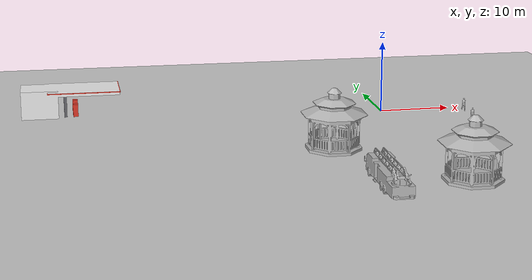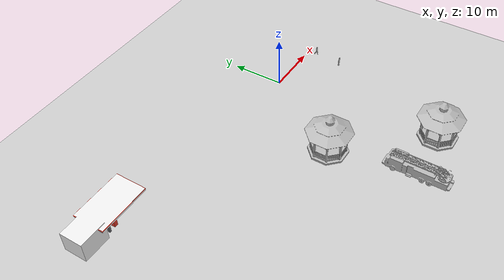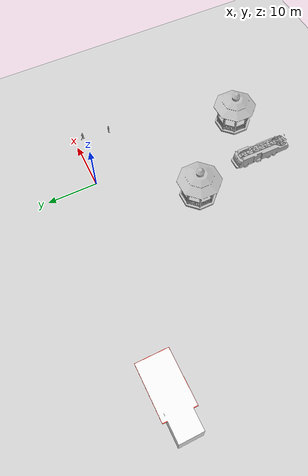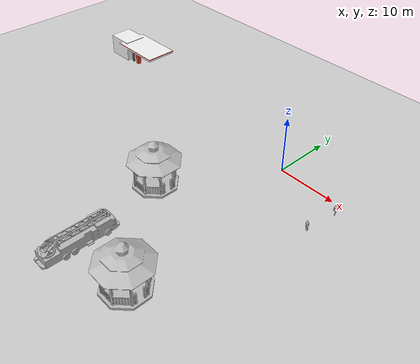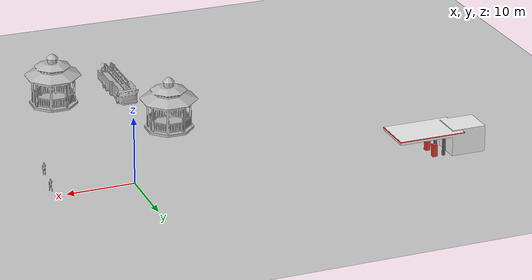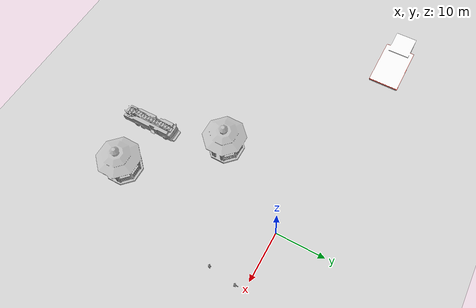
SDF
<sdf version="1.7">
 <world name="default">
  <model name="ground_plane">
   <static>1</static>
   <link name="link">
    <collision name="collision">
     <geometry><plane><normal>0 0 1</normal><size>1000 1000</size></plane></geometry>
     <surface><friction><ode><mu>100</mu><mu2>50</mu2></ode></friction></surface>
    </collision>
    <visual name="visual">
     <cast_shadows>0</cast_shadows>
     <geometry><plane><normal>0 0 1</normal><size>1000 1000</size></plane></geometry>
     <material>
      <script><uri>file://media/materials/scripts/gazebo.material</uri><name>Gazebo/Grey</name></script>
     </material>
    </visual>
   </link>
  </model>
  <model name="gazebo">
   <static>1</static>
   <link name="link">
    <collision name="collision">
     <geometry><mesh><scale>3 3 2.5</scale><uri>model://gazebo/meshes/gazebo.dae</uri></mesh></geometry>
    </collision>
    <visual name="visual">
     <geometry><mesh><scale>3 3 2.5</scale><uri>model://gazebo/meshes/gazebo.dae</uri></mesh></geometry>
    </visual>
   </link>
   <pose>-11.1385 -17.0359 0 0 -0 0</pose>
  </model>
  <model name="gazebo_0">
   <static>1</static>
   <link name="link">
    <collision name="collision">
     <geometry><mesh><scale>3 3 2.5</scale><uri>model://gazebo/meshes/gazebo.dae</uri></mesh></geometry>
    </collision>
    <visual name="visual">
     <geometry><mesh><scale>3 3 2.5</scale><uri>model://gazebo/meshes/gazebo.dae</uri></mesh></geometry>
    </visual>
   </link>
   <pose>2.19232 -32.3567 0 0 -0 0</pose>
  </model>
  <model name="fire_truck">
   <static>1</static>
   <link name="link">
    <collision name="collision">
     <geometry>
      <mesh><scale>0.1 0.1 0.1</scale><uri>model://fire_truck/meshes/fire_truck.obj</uri></mesh>
     </geometry>
    </collision>
    <visual name="visual">
     <geometry>
      <mesh><scale>0.1 0.1 0.1</scale><uri>model://fire_truck/meshes/fire_truck.obj</uri></mesh>
     </geometry>
    </visual>
   </link>
   <pose>-8.22986 -32.5166 0 0 -0 0</pose>
  </model>
  <model name="Gas Station">
   <static>1</static>
   <link name="link">
    <collision name="collision">
     <geometry><mesh><uri>model://gas_station/meshes/gas_station.dae</uri></mesh></geometry>
    </collision>
    <visual name="visual">
     <geometry><mesh><uri>model://gas_station/meshes/gas_station.dae</uri></mesh></geometry>
     <material>
      <script>
       <uri>model://gas_station/materials/scripts</uri>
       <uri>model://gas_station/materials/textures</uri>
       <name>GasStation/Diffuse</name>
      </script>
      <shader type="normal_map_tangent_space"><normal_map>GasStation_Normal.png</normal_map></shader>
     </material>
    </visual>
   </link>
   <pose>-44.7433 5.44081 0 0 -0 0</pose>
  </model>
  <model name="person_walking">
   <link name="link">
    <inertial>
     <pose>0 0 0.95 0 -0 0</pose>
     <mass>80</mass>
     <inertia><ixx>27.82</ixx><ixy>0</ixy><ixz>0</ixz><iyy>24.88</iyy><iyz>0</iyz><izz>4.57</izz></inertia>
    </inertial>
    <collision name="bottom">
     <pose>0 0 0.01 0 -0 0</pose>
     <geometry><box><size>0.35 0.75 0.02</size></box></geometry>
    </collision>
    <collision name="person">
     <pose>0 0 -0.02 0 -0 0</pose>
     <geometry><mesh><uri>model://person_walking/meshes/walking.dae</uri></mesh></geometry>
    </collision>
    <visual name="visual">
     <pose>0 0 -0.02 0 -0 0</pose>
     <geometry><mesh><uri>model://person_walking/meshes/walking.dae</uri></mesh></geometry>
    </visual>
   </link>
   <pose>11.8149 -1.84275 0 -1e-06 -1e-06 4e-06</pose>
  </model>
  <model name="person_standing">
   <link name="link">
    <inertial>
     <pose>0 -0.1 0.95 0 -0 0</pose>
     <mass>80</mass>
     <inertia><ixx>24.88</ixx><ixy>0</ixy><ixz>0</ixz><iyy>25.73</iyy><iyz>0</iyz><izz>2.48</izz></inertia>
    </inertial>
    <collision name="bottom">
     <pose>0 -0.1 0.01 0 -0 0</pose>
     <geometry><box><size>0.5 0.35 0.02</size></box></geometry>
    </collision>
    <collision name="person">
     <pose>0 0 0.02 0.04 -0 0</pose>
     <geometry><mesh><uri>model://person_standing/meshes/standing.dae</uri></mesh></geometry>
    </collision>
    <visual name="visual">
     <pose>0 0 0.02 0.04 -0 0</pose>
     <geometry><mesh><uri>model://person_standing/meshes/standing.dae</uri></mesh></geometry>
    </visual>
   </link>
   <pose>11.097 -7.3685 -1e-06 -1e-06 1e-06 -0.000132</pose>
  </model>
 </world>
</sdf>
